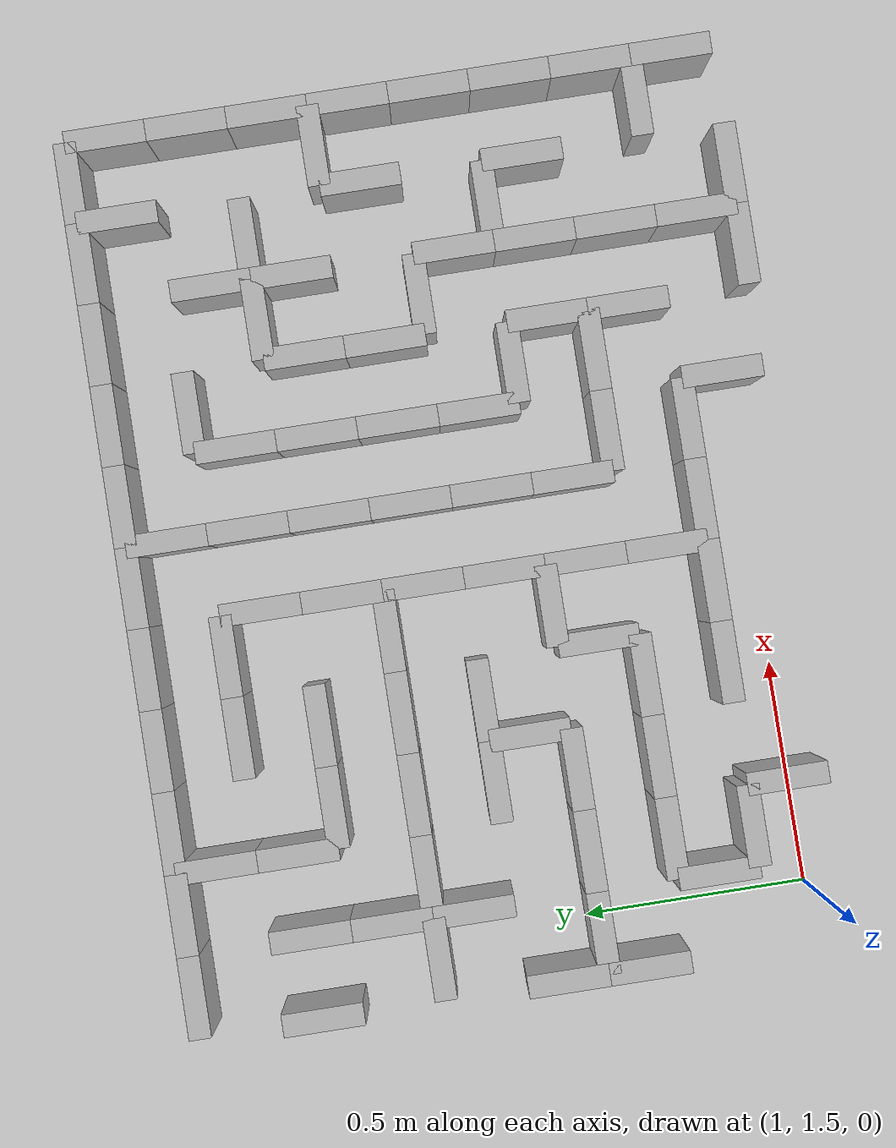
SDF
<sdf version="1.6">
 <world name="default">
  <model name="ground_plane">
   <static>1</static>
   <link name="link">
    <collision name="collision">
     <geometry><plane><normal>0 0 1</normal><size>100 100</size></plane></geometry>
     <surface><friction><ode><mu>100</mu><mu2>50</mu2></ode></friction></surface>
    </collision>
    <visual name="visual">
     <cast_shadows>0</cast_shadows>
     <geometry><plane><normal>0 0 1</normal><size>100 100</size></plane></geometry>
     <material>
      <script><uri>file://media/materials/scripts/gazebo.material</uri><name>Gazebo/Grey</name></script>
     </material>
    </visual>
   </link>
  </model>
  <model name="labyrinth_wall278">
   <pose>1.260000 1.530000 0.09 0 0 1.570796</pose>
   <link name="link">
    <inertial><mass>3.0</mass></inertial>
    <collision name="collision"><geometry><box><size>0.180 0.050 0.180</size></box></geometry></collision>
    <visual name="visual"><geometry><box><size>0.180 0.050 0.180</size></box></geometry></visual>
   </link>
   <static>true</static>
  </model>
  <model name="labyrinth_wall288">
   <pose>2.160000 1.530000 0.09 0 0 1.570796</pose>
   <link name="link">
    <inertial><mass>3.0</mass></inertial>
    <collision name="collision"><geometry><box><size>0.180 0.050 0.180</size></box></geometry></collision>
    <visual name="visual"><geometry><box><size>0.180 0.050 0.180</size></box></geometry></visual>
   </link>
   <static>true</static>
  </model>
  <model name="labyrinth_wall291">
   <pose>2.430000 1.440000 0.09 0 0 0.000000</pose>
   <link name="link">
    <inertial><mass>3.0</mass></inertial>
    <collision name="collision"><geometry><box><size>0.180 0.050 0.180</size></box></geometry></collision>
    <visual name="visual"><geometry><box><size>0.180 0.050 0.180</size></box></geometry></visual>
   </link>
   <static>true</static>
  </model>
  <model name="labyrinth_wall292">
   <pose>2.520000 1.530000 0.09 0 0 1.570796</pose>
   <link name="link">
    <inertial><mass>3.0</mass></inertial>
    <collision name="collision"><geometry><box><size>0.180 0.050 0.180</size></box></geometry></collision>
    <visual name="visual"><geometry><box><size>0.180 0.050 0.180</size></box></geometry></visual>
   </link>
   <static>true</static>
  </model>
  <model name="labyrinth_wall293">
   <pose>2.610000 1.440000 0.09 0 0 0.000000</pose>
   <link name="link">
    <inertial><mass>3.0</mass></inertial>
    <collision name="collision"><geometry><box><size>0.180 0.050 0.180</size></box></geometry></collision>
    <visual name="visual"><geometry><box><size>0.180 0.050 0.180</size></box></geometry></visual>
   </link>
   <static>true</static>
  </model>
  <model name="labyrinth_wall296">
   <pose>2.880000 1.530000 0.09 0 0 1.570796</pose>
   <link name="link">
    <inertial><mass>3.0</mass></inertial>
    <collision name="collision"><geometry><box><size>0.180 0.050 0.180</size></box></geometry></collision>
    <visual name="visual"><geometry><box><size>0.180 0.050 0.180</size></box></geometry></visual>
   </link>
   <static>true</static>
  </model>
  <model name="labyrinth_wall309">
   <pose>1.080000 1.710000 0.09 0 0 1.570796</pose>
   <link name="link">
    <inertial><mass>3.0</mass></inertial>
    <collision name="collision"><geometry><box><size>0.180 0.050 0.180</size></box></geometry></collision>
    <visual name="visual"><geometry><box><size>0.180 0.050 0.180</size></box></geometry></visual>
   </link>
   <static>true</static>
  </model>
  <model name="labyrinth_wall310">
   <pose>1.170000 1.620000 0.09 0 0 0.000000</pose>
   <link name="link">
    <inertial><mass>3.0</mass></inertial>
    <collision name="collision"><geometry><box><size>0.180 0.050 0.180</size></box></geometry></collision>
    <visual name="visual"><geometry><box><size>0.180 0.050 0.180</size></box></geometry></visual>
   </link>
   <static>true</static>
  </model>
  <model name="labyrinth_wall314">
   <pose>1.530000 1.620000 0.09 0 0 0.000000</pose>
   <link name="link">
    <inertial><mass>3.0</mass></inertial>
    <collision name="collision"><geometry><box><size>0.180 0.050 0.180</size></box></geometry></collision>
    <visual name="visual"><geometry><box><size>0.180 0.050 0.180</size></box></geometry></visual>
   </link>
   <static>true</static>
  </model>
  <model name="labyrinth_wall316">
   <pose>1.710000 1.620000 0.09 0 0 0.000000</pose>
   <link name="link">
    <inertial><mass>3.0</mass></inertial>
    <collision name="collision"><geometry><box><size>0.180 0.050 0.180</size></box></geometry></collision>
    <visual name="visual"><geometry><box><size>0.180 0.050 0.180</size></box></geometry></visual>
   </link>
   <static>true</static>
  </model>
  <model name="labyrinth_wall317">
   <pose>1.800000 1.710000 0.09 0 0 1.570796</pose>
   <link name="link">
    <inertial><mass>3.0</mass></inertial>
    <collision name="collision"><geometry><box><size>0.180 0.050 0.180</size></box></geometry></collision>
    <visual name="visual"><geometry><box><size>0.180 0.050 0.180</size></box></geometry></visual>
   </link>
   <static>true</static>
  </model>
  <model name="labyrinth_wall318">
   <pose>1.890000 1.620000 0.09 0 0 0.000000</pose>
   <link name="link">
    <inertial><mass>3.0</mass></inertial>
    <collision name="collision"><geometry><box><size>0.180 0.050 0.180</size></box></geometry></collision>
    <visual name="visual"><geometry><box><size>0.180 0.050 0.180</size></box></geometry></visual>
   </link>
   <static>true</static>
  </model>
  <model name="labyrinth_wall320">
   <pose>2.070000 1.620000 0.09 0 0 0.000000</pose>
   <link name="link">
    <inertial><mass>3.0</mass></inertial>
    <collision name="collision"><geometry><box><size>0.180 0.050 0.180</size></box></geometry></collision>
    <visual name="visual"><geometry><box><size>0.180 0.050 0.180</size></box></geometry></visual>
   </link>
   <static>true</static>
  </model>
  <model name="labyrinth_wall323">
   <pose>2.340000 1.710000 0.09 0 0 1.570796</pose>
   <link name="link">
    <inertial><mass>3.0</mass></inertial>
    <collision name="collision"><geometry><box><size>0.180 0.050 0.180</size></box></geometry></collision>
    <visual name="visual"><geometry><box><size>0.180 0.050 0.180</size></box></geometry></visual>
   </link>
   <static>true</static>
  </model>
  <model name="labyrinth_wall325">
   <pose>2.520000 1.710000 0.09 0 0 1.570796</pose>
   <link name="link">
    <inertial><mass>3.0</mass></inertial>
    <collision name="collision"><geometry><box><size>0.180 0.050 0.180</size></box></geometry></collision>
    <visual name="visual"><geometry><box><size>0.180 0.050 0.180</size></box></geometry></visual>
   </link>
   <static>true</static>
  </model>
  <model name="labyrinth_wall328">
   <pose>2.790000 1.620000 0.09 0 0 0.000000</pose>
   <link name="link">
    <inertial><mass>3.0</mass></inertial>
    <collision name="collision"><geometry><box><size>0.180 0.050 0.180</size></box></geometry></collision>
    <visual name="visual"><geometry><box><size>0.180 0.050 0.180</size></box></geometry></visual>
   </link>
   <static>true</static>
  </model>
  <model name="labyrinth_wall329">
   <pose>2.880000 1.710000 0.09 0 0 1.570796</pose>
   <link name="link">
    <inertial><mass>3.0</mass></inertial>
    <collision name="collision"><geometry><box><size>0.180 0.050 0.180</size></box></geometry></collision>
    <visual name="visual"><geometry><box><size>0.180 0.050 0.180</size></box></geometry></visual>
   </link>
   <static>true</static>
  </model>
  <model name="labyrinth_wall340">
   <pose>0.900000 1.890000 0.09 0 0 1.570796</pose>
   <link name="link">
    <inertial><mass>3.0</mass></inertial>
    <collision name="collision"><geometry><box><size>0.180 0.050 0.180</size></box></geometry></collision>
    <visual name="visual"><geometry><box><size>0.180 0.050 0.180</size></box></geometry></visual>
   </link>
   <static>true</static>
  </model>
  <model name="labyrinth_wall343">
   <pose>1.170000 1.800000 0.09 0 0 0.000000</pose>
   <link name="link">
    <inertial><mass>3.0</mass></inertial>
    <collision name="collision"><geometry><box><size>0.180 0.050 0.180</size></box></geometry></collision>
    <visual name="visual"><geometry><box><size>0.180 0.050 0.180</size></box></geometry></visual>
   </link>
   <static>true</static>
  </model>
  <model name="labyrinth_wall345">
   <pose>1.350000 1.800000 0.09 0 0 0.000000</pose>
   <link name="link">
    <inertial><mass>3.0</mass></inertial>
    <collision name="collision"><geometry><box><size>0.180 0.050 0.180</size></box></geometry></collision>
    <visual name="visual"><geometry><box><size>0.180 0.050 0.180</size></box></geometry></visual>
   </link>
   <static>true</static>
  </model>
  <model name="labyrinth_wall347">
   <pose>1.530000 1.800000 0.09 0 0 0.000000</pose>
   <link name="link">
    <inertial><mass>3.0</mass></inertial>
    <collision name="collision"><geometry><box><size>0.180 0.050 0.180</size></box></geometry></collision>
    <visual name="visual"><geometry><box><size>0.180 0.050 0.180</size></box></geometry></visual>
   </link>
   <static>true</static>
  </model>
  <model name="labyrinth_wall348">
   <pose>1.620000 1.890000 0.09 0 0 1.570796</pose>
   <link name="link">
    <inertial><mass>3.0</mass></inertial>
    <collision name="collision"><geometry><box><size>0.180 0.050 0.180</size></box></geometry></collision>
    <visual name="visual"><geometry><box><size>0.180 0.050 0.180</size></box></geometry></visual>
   </link>
   <static>true</static>
  </model>
  <model name="labyrinth_wall350">
   <pose>1.800000 1.890000 0.09 0 0 1.570796</pose>
   <link name="link">
    <inertial><mass>3.0</mass></inertial>
    <collision name="collision"><geometry><box><size>0.180 0.050 0.180</size></box></geometry></collision>
    <visual name="visual"><geometry><box><size>0.180 0.050 0.180</size></box></geometry></visual>
   </link>
   <static>true</static>
  </model>
  <model name="labyrinth_wall352">
   <pose>1.980000 1.890000 0.09 0 0 1.570796</pose>
   <link name="link">
    <inertial><mass>3.0</mass></inertial>
    <collision name="collision"><geometry><box><size>0.180 0.050 0.180</size></box></geometry></collision>
    <visual name="visual"><geometry><box><size>0.180 0.050 0.180</size></box></geometry></visual>
   </link>
   <static>true</static>
  </model>
  <model name="labyrinth_wall353">
   <pose>2.070000 1.800000 0.09 0 0 0.000000</pose>
   <link name="link">
    <inertial><mass>3.0</mass></inertial>
    <collision name="collision"><geometry><box><size>0.180 0.050 0.180</size></box></geometry></collision>
    <visual name="visual"><geometry><box><size>0.180 0.050 0.180</size></box></geometry></visual>
   </link>
   <static>true</static>
  </model>
  <model name="labyrinth_wall355">
   <pose>2.250000 1.800000 0.09 0 0 0.000000</pose>
   <link name="link">
    <inertial><mass>3.0</mass></inertial>
    <collision name="collision"><geometry><box><size>0.180 0.050 0.180</size></box></geometry></collision>
    <visual name="visual"><geometry><box><size>0.180 0.050 0.180</size></box></geometry></visual>
   </link>
   <static>true</static>
  </model>
  <model name="labyrinth_wall356">
   <pose>2.340000 1.890000 0.09 0 0 1.570796</pose>
   <link name="link">
    <inertial><mass>3.0</mass></inertial>
    <collision name="collision"><geometry><box><size>0.180 0.050 0.180</size></box></geometry></collision>
    <visual name="visual"><geometry><box><size>0.180 0.050 0.180</size></box></geometry></visual>
   </link>
   <static>true</static>
  </model>
  <model name="labyrinth_wall358">
   <pose>2.520000 1.890000 0.09 0 0 1.570796</pose>
   <link name="link">
    <inertial><mass>3.0</mass></inertial>
    <collision name="collision"><geometry><box><size>0.180 0.050 0.180</size></box></geometry></collision>
    <visual name="visual"><geometry><box><size>0.180 0.050 0.180</size></box></geometry></visual>
   </link>
   <static>true</static>
  </model>
  <model name="labyrinth_wall360">
   <pose>2.700000 1.890000 0.09 0 0 1.570796</pose>
   <link name="link">
    <inertial><mass>3.0</mass></inertial>
    <collision name="collision"><geometry><box><size>0.180 0.050 0.180</size></box></geometry></collision>
    <visual name="visual"><geometry><box><size>0.180 0.050 0.180</size></box></geometry></visual>
   </link>
   <static>true</static>
  </model>
  <model name="labyrinth_wall362">
   <pose>2.880000 1.890000 0.09 0 0 1.570796</pose>
   <link name="link">
    <inertial><mass>3.0</mass></inertial>
    <collision name="collision"><geometry><box><size>0.180 0.050 0.180</size></box></geometry></collision>
    <visual name="visual"><geometry><box><size>0.180 0.050 0.180</size></box></geometry></visual>
   </link>
   <static>true</static>
  </model>
  <model name="labyrinth_wall373">
   <pose>0.900000 2.070000 0.09 0 0 1.570796</pose>
   <link name="link">
    <inertial><mass>3.0</mass></inertial>
    <collision name="collision"><geometry><box><size>0.180 0.050 0.180</size></box></geometry></collision>
    <visual name="visual"><geometry><box><size>0.180 0.050 0.180</size></box></geometry></visual>
   </link>
   <static>true</static>
  </model>
  <model name="labyrinth_wall374">
   <pose>0.990000 1.980000 0.09 0 0 0.000000</pose>
   <link name="link">
    <inertial><mass>3.0</mass></inertial>
    <collision name="collision"><geometry><box><size>0.180 0.050 0.180</size></box></geometry></collision>
    <visual name="visual"><geometry><box><size>0.180 0.050 0.180</size></box></geometry></visual>
   </link>
   <static>true</static>
  </model>
  <model name="labyrinth_wall376">
   <pose>1.170000 1.980000 0.09 0 0 0.000000</pose>
   <link name="link">
    <inertial><mass>3.0</mass></inertial>
    <collision name="collision"><geometry><box><size>0.180 0.050 0.180</size></box></geometry></collision>
    <visual name="visual"><geometry><box><size>0.180 0.050 0.180</size></box></geometry></visual>
   </link>
   <static>true</static>
  </model>
  <model name="labyrinth_wall378">
   <pose>1.350000 1.980000 0.09 0 0 0.000000</pose>
   <link name="link">
    <inertial><mass>3.0</mass></inertial>
    <collision name="collision"><geometry><box><size>0.180 0.050 0.180</size></box></geometry></collision>
    <visual name="visual"><geometry><box><size>0.180 0.050 0.180</size></box></geometry></visual>
   </link>
   <static>true</static>
  </model>
  <model name="labyrinth_wall379">
   <pose>1.440000 2.070000 0.09 0 0 1.570796</pose>
   <link name="link">
    <inertial><mass>3.0</mass></inertial>
    <collision name="collision"><geometry><box><size>0.180 0.050 0.180</size></box></geometry></collision>
    <visual name="visual"><geometry><box><size>0.180 0.050 0.180</size></box></geometry></visual>
   </link>
   <static>true</static>
  </model>
  <model name="labyrinth_wall382">
   <pose>1.710000 1.980000 0.09 0 0 0.000000</pose>
   <link name="link">
    <inertial><mass>3.0</mass></inertial>
    <collision name="collision"><geometry><box><size>0.180 0.050 0.180</size></box></geometry></collision>
    <visual name="visual"><geometry><box><size>0.180 0.050 0.180</size></box></geometry></visual>
   </link>
   <static>true</static>
  </model>
  <model name="labyrinth_wall383">
   <pose>1.800000 2.070000 0.09 0 0 1.570796</pose>
   <link name="link">
    <inertial><mass>3.0</mass></inertial>
    <collision name="collision"><geometry><box><size>0.180 0.050 0.180</size></box></geometry></collision>
    <visual name="visual"><geometry><box><size>0.180 0.050 0.180</size></box></geometry></visual>
   </link>
   <static>true</static>
  </model>
  <model name="labyrinth_wall385">
   <pose>1.980000 2.070000 0.09 0 0 1.570796</pose>
   <link name="link">
    <inertial><mass>3.0</mass></inertial>
    <collision name="collision"><geometry><box><size>0.180 0.050 0.180</size></box></geometry></collision>
    <visual name="visual"><geometry><box><size>0.180 0.050 0.180</size></box></geometry></visual>
   </link>
   <static>true</static>
  </model>
  <model name="labyrinth_wall387">
   <pose>2.160000 2.070000 0.09 0 0 1.570796</pose>
   <link name="link">
    <inertial><mass>3.0</mass></inertial>
    <collision name="collision"><geometry><box><size>0.180 0.050 0.180</size></box></geometry></collision>
    <visual name="visual"><geometry><box><size>0.180 0.050 0.180</size></box></geometry></visual>
   </link>
   <static>true</static>
  </model>
  <model name="labyrinth_wall388">
   <pose>2.250000 1.980000 0.09 0 0 0.000000</pose>
   <link name="link">
    <inertial><mass>3.0</mass></inertial>
    <collision name="collision"><geometry><box><size>0.180 0.050 0.180</size></box></geometry></collision>
    <visual name="visual"><geometry><box><size>0.180 0.050 0.180</size></box></geometry></visual>
   </link>
   <static>true</static>
  </model>
  <model name="labyrinth_wall391">
   <pose>2.520000 2.070000 0.09 0 0 1.570796</pose>
   <link name="link">
    <inertial><mass>3.0</mass></inertial>
    <collision name="collision"><geometry><box><size>0.180 0.050 0.180</size></box></geometry></collision>
    <visual name="visual"><geometry><box><size>0.180 0.050 0.180</size></box></geometry></visual>
   </link>
   <static>true</static>
  </model>
  <model name="labyrinth_wall392">
   <pose>2.610000 1.980000 0.09 0 0 0.000000</pose>
   <link name="link">
    <inertial><mass>3.0</mass></inertial>
    <collision name="collision"><geometry><box><size>0.180 0.050 0.180</size></box></geometry></collision>
    <visual name="visual"><geometry><box><size>0.180 0.050 0.180</size></box></geometry></visual>
   </link>
   <static>true</static>
  </model>
  <model name="labyrinth_wall395">
   <pose>2.880000 2.070000 0.09 0 0 1.570796</pose>
   <link name="link">
    <inertial><mass>3.0</mass></inertial>
    <collision name="collision"><geometry><box><size>0.180 0.050 0.180</size></box></geometry></collision>
    <visual name="visual"><geometry><box><size>0.180 0.050 0.180</size></box></geometry></visual>
   </link>
   <static>true</static>
  </model>
  <model name="labyrinth_wall408">
   <pose>1.080000 2.250000 0.09 0 0 1.570796</pose>
   <link name="link">
    <inertial><mass>3.0</mass></inertial>
    <collision name="collision"><geometry><box><size>0.180 0.050 0.180</size></box></geometry></collision>
    <visual name="visual"><geometry><box><size>0.180 0.050 0.180</size></box></geometry></visual>
   </link>
   <static>true</static>
  </model>
  <model name="labyrinth_wall411">
   <pose>1.350000 2.160000 0.09 0 0 0.000000</pose>
   <link name="link">
    <inertial><mass>3.0</mass></inertial>
    <collision name="collision"><geometry><box><size>0.180 0.050 0.180</size></box></geometry></collision>
    <visual name="visual"><geometry><box><size>0.180 0.050 0.180</size></box></geometry></visual>
   </link>
   <static>true</static>
  </model>
  <model name="labyrinth_wall413">
   <pose>1.530000 2.160000 0.09 0 0 0.000000</pose>
   <link name="link">
    <inertial><mass>3.0</mass></inertial>
    <collision name="collision"><geometry><box><size>0.180 0.050 0.180</size></box></geometry></collision>
    <visual name="visual"><geometry><box><size>0.180 0.050 0.180</size></box></geometry></visual>
   </link>
   <static>true</static>
  </model>
  <model name="labyrinth_wall416">
   <pose>1.800000 2.250000 0.09 0 0 1.570796</pose>
   <link name="link">
    <inertial><mass>3.0</mass></inertial>
    <collision name="collision"><geometry><box><size>0.180 0.050 0.180</size></box></geometry></collision>
    <visual name="visual"><geometry><box><size>0.180 0.050 0.180</size></box></geometry></visual>
   </link>
   <static>true</static>
  </model>
  <model name="labyrinth_wall418">
   <pose>1.980000 2.250000 0.09 0 0 1.570796</pose>
   <link name="link">
    <inertial><mass>3.0</mass></inertial>
    <collision name="collision"><geometry><box><size>0.180 0.050 0.180</size></box></geometry></collision>
    <visual name="visual"><geometry><box><size>0.180 0.050 0.180</size></box></geometry></visual>
   </link>
   <static>true</static>
  </model>
  <model name="labyrinth_wall420">
   <pose>2.160000 2.250000 0.09 0 0 1.570796</pose>
   <link name="link">
    <inertial><mass>3.0</mass></inertial>
    <collision name="collision"><geometry><box><size>0.180 0.050 0.180</size></box></geometry></collision>
    <visual name="visual"><geometry><box><size>0.180 0.050 0.180</size></box></geometry></visual>
   </link>
   <static>true</static>
  </model>
  <model name="labyrinth_wall422">
   <pose>2.340000 2.250000 0.09 0 0 1.570796</pose>
   <link name="link">
    <inertial><mass>3.0</mass></inertial>
    <collision name="collision"><geometry><box><size>0.180 0.050 0.180</size></box></geometry></collision>
    <visual name="visual"><geometry><box><size>0.180 0.050 0.180</size></box></geometry></visual>
   </link>
   <static>true</static>
  </model>
  <model name="labyrinth_wall423">
   <pose>2.430000 2.160000 0.09 0 0 0.000000</pose>
   <link name="link">
    <inertial><mass>3.0</mass></inertial>
    <collision name="collision"><geometry><box><size>0.180 0.050 0.180</size></box></geometry></collision>
    <visual name="visual"><geometry><box><size>0.180 0.050 0.180</size></box></geometry></visual>
   </link>
   <static>true</static>
  </model>
  <model name="labyrinth_wall426">
   <pose>2.700000 2.250000 0.09 0 0 1.570796</pose>
   <link name="link">
    <inertial><mass>3.0</mass></inertial>
    <collision name="collision"><geometry><box><size>0.180 0.050 0.180</size></box></geometry></collision>
    <visual name="visual"><geometry><box><size>0.180 0.050 0.180</size></box></geometry></visual>
   </link>
   <static>true</static>
  </model>
  <model name="labyrinth_wall428">
   <pose>2.880000 2.250000 0.09 0 0 1.570796</pose>
   <link name="link">
    <inertial><mass>3.0</mass></inertial>
    <collision name="collision"><geometry><box><size>0.180 0.050 0.180</size></box></geometry></collision>
    <visual name="visual"><geometry><box><size>0.180 0.050 0.180</size></box></geometry></visual>
   </link>
   <static>true</static>
  </model>
  <model name="labyrinth_wall440">
   <pose>0.990000 2.340000 0.09 0 0 0.000000</pose>
   <link name="link">
    <inertial><mass>3.0</mass></inertial>
    <collision name="collision"><geometry><box><size>0.180 0.050 0.180</size></box></geometry></collision>
    <visual name="visual"><geometry><box><size>0.180 0.050 0.180</size></box></geometry></visual>
   </link>
   <static>true</static>
  </model>
  <model name="labyrinth_wall441">
   <pose>1.080000 2.430000 0.09 0 0 1.570796</pose>
   <link name="link">
    <inertial><mass>3.0</mass></inertial>
    <collision name="collision"><geometry><box><size>0.180 0.050 0.180</size></box></geometry></collision>
    <visual name="visual"><geometry><box><size>0.180 0.050 0.180</size></box></geometry></visual>
   </link>
   <static>true</static>
  </model>
  <model name="labyrinth_wall442">
   <pose>1.170000 2.340000 0.09 0 0 0.000000</pose>
   <link name="link">
    <inertial><mass>3.0</mass></inertial>
    <collision name="collision"><geometry><box><size>0.180 0.050 0.180</size></box></geometry></collision>
    <visual name="visual"><geometry><box><size>0.180 0.050 0.180</size></box></geometry></visual>
   </link>
   <static>true</static>
  </model>
  <model name="labyrinth_wall444">
   <pose>1.350000 2.340000 0.09 0 0 0.000000</pose>
   <link name="link">
    <inertial><mass>3.0</mass></inertial>
    <collision name="collision"><geometry><box><size>0.180 0.050 0.180</size></box></geometry></collision>
    <visual name="visual"><geometry><box><size>0.180 0.050 0.180</size></box></geometry></visual>
   </link>
   <static>true</static>
  </model>
  <model name="labyrinth_wall446">
   <pose>1.530000 2.340000 0.09 0 0 0.000000</pose>
   <link name="link">
    <inertial><mass>3.0</mass></inertial>
    <collision name="collision"><geometry><box><size>0.180 0.050 0.180</size></box></geometry></collision>
    <visual name="visual"><geometry><box><size>0.180 0.050 0.180</size></box></geometry></visual>
   </link>
   <static>true</static>
  </model>
  <model name="labyrinth_wall448">
   <pose>1.710000 2.340000 0.09 0 0 0.000000</pose>
   <link name="link">
    <inertial><mass>3.0</mass></inertial>
    <collision name="collision"><geometry><box><size>0.180 0.050 0.180</size></box></geometry></collision>
    <visual name="visual"><geometry><box><size>0.180 0.050 0.180</size></box></geometry></visual>
   </link>
   <static>true</static>
  </model>
  <model name="labyrinth_wall449">
   <pose>1.800000 2.430000 0.09 0 0 1.570796</pose>
   <link name="link">
    <inertial><mass>3.0</mass></inertial>
    <collision name="collision"><geometry><box><size>0.180 0.050 0.180</size></box></geometry></collision>
    <visual name="visual"><geometry><box><size>0.180 0.050 0.180</size></box></geometry></visual>
   </link>
   <static>true</static>
  </model>
  <model name="labyrinth_wall451">
   <pose>1.980000 2.430000 0.09 0 0 1.570796</pose>
   <link name="link">
    <inertial><mass>3.0</mass></inertial>
    <collision name="collision"><geometry><box><size>0.180 0.050 0.180</size></box></geometry></collision>
    <visual name="visual"><geometry><box><size>0.180 0.050 0.180</size></box></geometry></visual>
   </link>
   <static>true</static>
  </model>
  <model name="labyrinth_wall453">
   <pose>2.160000 2.430000 0.09 0 0 1.570796</pose>
   <link name="link">
    <inertial><mass>3.0</mass></inertial>
    <collision name="collision"><geometry><box><size>0.180 0.050 0.180</size></box></geometry></collision>
    <visual name="visual"><geometry><box><size>0.180 0.050 0.180</size></box></geometry></visual>
   </link>
   <static>true</static>
  </model>
  <model name="labyrinth_wall455">
   <pose>2.340000 2.430000 0.09 0 0 1.570796</pose>
   <link name="link">
    <inertial><mass>3.0</mass></inertial>
    <collision name="collision"><geometry><box><size>0.180 0.050 0.180</size></box></geometry></collision>
    <visual name="visual"><geometry><box><size>0.180 0.050 0.180</size></box></geometry></visual>
   </link>
   <static>true</static>
  </model>
  <model name="labyrinth_wall457">
   <pose>2.520000 2.430000 0.09 0 0 1.570796</pose>
   <link name="link">
    <inertial><mass>3.0</mass></inertial>
    <collision name="collision"><geometry><box><size>0.180 0.050 0.180</size></box></geometry></collision>
    <visual name="visual"><geometry><box><size>0.180 0.050 0.180</size></box></geometry></visual>
   </link>
   <static>true</static>
  </model>
  <model name="labyrinth_wall460">
   <pose>2.790000 2.340000 0.09 0 0 0.000000</pose>
   <link name="link">
    <inertial><mass>3.0</mass></inertial>
    <collision name="collision"><geometry><box><size>0.180 0.050 0.180</size></box></geometry></collision>
    <visual name="visual"><geometry><box><size>0.180 0.050 0.180</size></box></geometry></visual>
   </link>
   <static>true</static>
  </model>
  <model name="labyrinth_wall461">
   <pose>2.880000 2.430000 0.09 0 0 1.570796</pose>
   <link name="link">
    <inertial><mass>3.0</mass></inertial>
    <collision name="collision"><geometry><box><size>0.180 0.050 0.180</size></box></geometry></collision>
    <visual name="visual"><geometry><box><size>0.180 0.050 0.180</size></box></geometry></visual>
   </link>
   <static>true</static>
  </model>
  <model name="labyrinth_wall472">
   <pose>0.900000 2.610000 0.09 0 0 1.570796</pose>
   <link name="link">
    <inertial><mass>3.0</mass></inertial>
    <collision name="collision"><geometry><box><size>0.180 0.050 0.180</size></box></geometry></collision>
    <visual name="visual"><geometry><box><size>0.180 0.050 0.180</size></box></geometry></visual>
   </link>
   <static>true</static>
  </model>
  <model name="labyrinth_wall474">
   <pose>1.080000 2.610000 0.09 0 0 1.570796</pose>
   <link name="link">
    <inertial><mass>3.0</mass></inertial>
    <collision name="collision"><geometry><box><size>0.180 0.050 0.180</size></box></geometry></collision>
    <visual name="visual"><geometry><box><size>0.180 0.050 0.180</size></box></geometry></visual>
   </link>
   <static>true</static>
  </model>
  <model name="labyrinth_wall476">
   <pose>1.260000 2.610000 0.09 0 0 1.570796</pose>
   <link name="link">
    <inertial><mass>3.0</mass></inertial>
    <collision name="collision"><geometry><box><size>0.180 0.050 0.180</size></box></geometry></collision>
    <visual name="visual"><geometry><box><size>0.180 0.050 0.180</size></box></geometry></visual>
   </link>
   <static>true</static>
  </model>
  <model name="labyrinth_wall477">
   <pose>1.350000 2.520000 0.09 0 0 0.000000</pose>
   <link name="link">
    <inertial><mass>3.0</mass></inertial>
    <collision name="collision"><geometry><box><size>0.180 0.050 0.180</size></box></geometry></collision>
    <visual name="visual"><geometry><box><size>0.180 0.050 0.180</size></box></geometry></visual>
   </link>
   <static>true</static>
  </model>
  <model name="labyrinth_wall479">
   <pose>1.530000 2.520000 0.09 0 0 0.000000</pose>
   <link name="link">
    <inertial><mass>3.0</mass></inertial>
    <collision name="collision"><geometry><box><size>0.180 0.050 0.180</size></box></geometry></collision>
    <visual name="visual"><geometry><box><size>0.180 0.050 0.180</size></box></geometry></visual>
   </link>
   <static>true</static>
  </model>
  <model name="labyrinth_wall482">
   <pose>1.800000 2.610000 0.09 0 0 1.570796</pose>
   <link name="link">
    <inertial><mass>3.0</mass></inertial>
    <collision name="collision"><geometry><box><size>0.180 0.050 0.180</size></box></geometry></collision>
    <visual name="visual"><geometry><box><size>0.180 0.050 0.180</size></box></geometry></visual>
   </link>
   <static>true</static>
  </model>
  <model name="labyrinth_wall484">
   <pose>1.980000 2.610000 0.09 0 0 1.570796</pose>
   <link name="link">
    <inertial><mass>3.0</mass></inertial>
    <collision name="collision"><geometry><box><size>0.180 0.050 0.180</size></box></geometry></collision>
    <visual name="visual"><geometry><box><size>0.180 0.050 0.180</size></box></geometry></visual>
   </link>
   <static>true</static>
  </model>
  <model name="labyrinth_wall486">
   <pose>2.160000 2.610000 0.09 0 0 1.570796</pose>
   <link name="link">
    <inertial><mass>3.0</mass></inertial>
    <collision name="collision"><geometry><box><size>0.180 0.050 0.180</size></box></geometry></collision>
    <visual name="visual"><geometry><box><size>0.180 0.050 0.180</size></box></geometry></visual>
   </link>
   <static>true</static>
  </model>
  <model name="labyrinth_wall489">
   <pose>2.430000 2.520000 0.09 0 0 0.000000</pose>
   <link name="link">
    <inertial><mass>3.0</mass></inertial>
    <collision name="collision"><geometry><box><size>0.180 0.050 0.180</size></box></geometry></collision>
    <visual name="visual"><geometry><box><size>0.180 0.050 0.180</size></box></geometry></visual>
   </link>
   <static>true</static>
  </model>
  <model name="labyrinth_wall490">
   <pose>2.520000 2.610000 0.09 0 0 1.570796</pose>
   <link name="link">
    <inertial><mass>3.0</mass></inertial>
    <collision name="collision"><geometry><box><size>0.180 0.050 0.180</size></box></geometry></collision>
    <visual name="visual"><geometry><box><size>0.180 0.050 0.180</size></box></geometry></visual>
   </link>
   <static>true</static>
  </model>
  <model name="labyrinth_wall491">
   <pose>2.610000 2.520000 0.09 0 0 0.000000</pose>
   <link name="link">
    <inertial><mass>3.0</mass></inertial>
    <collision name="collision"><geometry><box><size>0.180 0.050 0.180</size></box></geometry></collision>
    <visual name="visual"><geometry><box><size>0.180 0.050 0.180</size></box></geometry></visual>
   </link>
   <static>true</static>
  </model>
  <model name="labyrinth_wall494">
   <pose>2.880000 2.610000 0.09 0 0 1.570796</pose>
   <link name="link">
    <inertial><mass>3.0</mass></inertial>
    <collision name="collision"><geometry><box><size>0.180 0.050 0.180</size></box></geometry></collision>
    <visual name="visual"><geometry><box><size>0.180 0.050 0.180</size></box></geometry></visual>
   </link>
   <static>true</static>
  </model>
  <model name="labyrinth_wall513">
   <pose>0.990000 2.880000 0.09 0 0 0.000000</pose>
   <link name="link">
    <inertial><mass>3.0</mass></inertial>
    <collision name="collision"><geometry><box><size>0.180 0.050 0.180</size></box></geometry></collision>
    <visual name="visual"><geometry><box><size>0.180 0.050 0.180</size></box></geometry></visual>
   </link>
   <static>true</static>
  </model>
  <model name="labyrinth_wall515">
   <pose>1.260000 2.790000 0.09 0 0 1.570796</pose>
   <link name="link">
    <inertial><mass>3.0</mass></inertial>
    <collision name="collision"><geometry><box><size>0.180 0.050 0.180</size></box></geometry></collision>
    <visual name="visual"><geometry><box><size>0.180 0.050 0.180</size></box></geometry></visual>
   </link>
   <static>true</static>
  </model>
  <model name="labyrinth_wall516">
   <pose>1.170000 2.880000 0.09 0 0 0.000000</pose>
   <link name="link">
    <inertial><mass>3.0</mass></inertial>
    <collision name="collision"><geometry><box><size>0.180 0.050 0.180</size></box></geometry></collision>
    <visual name="visual"><geometry><box><size>0.180 0.050 0.180</size></box></geometry></visual>
   </link>
   <static>true</static>
  </model>
  <model name="labyrinth_wall519">
   <pose>1.350000 2.880000 0.09 0 0 0.000000</pose>
   <link name="link">
    <inertial><mass>3.0</mass></inertial>
    <collision name="collision"><geometry><box><size>0.180 0.050 0.180</size></box></geometry></collision>
    <visual name="visual"><geometry><box><size>0.180 0.050 0.180</size></box></geometry></visual>
   </link>
   <static>true</static>
  </model>
  <model name="labyrinth_wall520">
   <pose>1.530000 2.700000 0.09 0 0 0.000000</pose>
   <link name="link">
    <inertial><mass>3.0</mass></inertial>
    <collision name="collision"><geometry><box><size>0.180 0.050 0.180</size></box></geometry></collision>
    <visual name="visual"><geometry><box><size>0.180 0.050 0.180</size></box></geometry></visual>
   </link>
   <static>true</static>
  </model>
  <model name="labyrinth_wall522">
   <pose>1.530000 2.880000 0.09 0 0 0.000000</pose>
   <link name="link">
    <inertial><mass>3.0</mass></inertial>
    <collision name="collision"><geometry><box><size>0.180 0.050 0.180</size></box></geometry></collision>
    <visual name="visual"><geometry><box><size>0.180 0.050 0.180</size></box></geometry></visual>
   </link>
   <static>true</static>
  </model>
  <model name="labyrinth_wall523">
   <pose>1.710000 2.700000 0.09 0 0 0.000000</pose>
   <link name="link">
    <inertial><mass>3.0</mass></inertial>
    <collision name="collision"><geometry><box><size>0.180 0.050 0.180</size></box></geometry></collision>
    <visual name="visual"><geometry><box><size>0.180 0.050 0.180</size></box></geometry></visual>
   </link>
   <static>true</static>
  </model>
  <model name="labyrinth_wall525">
   <pose>1.710000 2.880000 0.09 0 0 0.000000</pose>
   <link name="link">
    <inertial><mass>3.0</mass></inertial>
    <collision name="collision"><geometry><box><size>0.180 0.050 0.180</size></box></geometry></collision>
    <visual name="visual"><geometry><box><size>0.180 0.050 0.180</size></box></geometry></visual>
   </link>
   <static>true</static>
  </model>
  <model name="labyrinth_wall527">
   <pose>1.980000 2.790000 0.09 0 0 1.570796</pose>
   <link name="link">
    <inertial><mass>3.0</mass></inertial>
    <collision name="collision"><geometry><box><size>0.180 0.050 0.180</size></box></geometry></collision>
    <visual name="visual"><geometry><box><size>0.180 0.050 0.180</size></box></geometry></visual>
   </link>
   <static>true</static>
  </model>
  <model name="labyrinth_wall528">
   <pose>1.890000 2.880000 0.09 0 0 0.000000</pose>
   <link name="link">
    <inertial><mass>3.0</mass></inertial>
    <collision name="collision"><geometry><box><size>0.180 0.050 0.180</size></box></geometry></collision>
    <visual name="visual"><geometry><box><size>0.180 0.050 0.180</size></box></geometry></visual>
   </link>
   <static>true</static>
  </model>
  <model name="labyrinth_wall531">
   <pose>2.070000 2.880000 0.09 0 0 0.000000</pose>
   <link name="link">
    <inertial><mass>3.0</mass></inertial>
    <collision name="collision"><geometry><box><size>0.180 0.050 0.180</size></box></geometry></collision>
    <visual name="visual"><geometry><box><size>0.180 0.050 0.180</size></box></geometry></visual>
   </link>
   <static>true</static>
  </model>
  <model name="labyrinth_wall532">
   <pose>2.250000 2.700000 0.09 0 0 0.000000</pose>
   <link name="link">
    <inertial><mass>3.0</mass></inertial>
    <collision name="collision"><geometry><box><size>0.180 0.050 0.180</size></box></geometry></collision>
    <visual name="visual"><geometry><box><size>0.180 0.050 0.180</size></box></geometry></visual>
   </link>
   <static>true</static>
  </model>
  <model name="labyrinth_wall534">
   <pose>2.250000 2.880000 0.09 0 0 0.000000</pose>
   <link name="link">
    <inertial><mass>3.0</mass></inertial>
    <collision name="collision"><geometry><box><size>0.180 0.050 0.180</size></box></geometry></collision>
    <visual name="visual"><geometry><box><size>0.180 0.050 0.180</size></box></geometry></visual>
   </link>
   <static>true</static>
  </model>
  <model name="labyrinth_wall537">
   <pose>2.430000 2.880000 0.09 0 0 0.000000</pose>
   <link name="link">
    <inertial><mass>3.0</mass></inertial>
    <collision name="collision"><geometry><box><size>0.180 0.050 0.180</size></box></geometry></collision>
    <visual name="visual"><geometry><box><size>0.180 0.050 0.180</size></box></geometry></visual>
   </link>
   <static>true</static>
  </model>
  <model name="labyrinth_wall539">
   <pose>2.700000 2.790000 0.09 0 0 1.570796</pose>
   <link name="link">
    <inertial><mass>3.0</mass></inertial>
    <collision name="collision"><geometry><box><size>0.180 0.050 0.180</size></box></geometry></collision>
    <visual name="visual"><geometry><box><size>0.180 0.050 0.180</size></box></geometry></visual>
   </link>
   <static>true</static>
  </model>
  <model name="labyrinth_wall540">
   <pose>2.610000 2.880000 0.09 0 0 0.000000</pose>
   <link name="link">
    <inertial><mass>3.0</mass></inertial>
    <collision name="collision"><geometry><box><size>0.180 0.050 0.180</size></box></geometry></collision>
    <visual name="visual"><geometry><box><size>0.180 0.050 0.180</size></box></geometry></visual>
   </link>
   <static>true</static>
  </model>
  <model name="labyrinth_wall542">
   <pose>2.880000 2.790000 0.09 0 0 1.570796</pose>
   <link name="link">
    <inertial><mass>3.0</mass></inertial>
    <collision name="collision"><geometry><box><size>0.180 0.050 0.180</size></box></geometry></collision>
    <visual name="visual"><geometry><box><size>0.180 0.050 0.180</size></box></geometry></visual>
   </link>
   <static>true</static>
  </model>
  <model name="labyrinth_wall543">
   <pose>2.790000 2.880000 0.09 0 0 0.000000</pose>
   <link name="link">
    <inertial><mass>3.0</mass></inertial>
    <collision name="collision"><geometry><box><size>0.180 0.050 0.180</size></box></geometry></collision>
    <visual name="visual"><geometry><box><size>0.180 0.050 0.180</size></box></geometry></visual>
   </link>
   <static>true</static>
  </model>
 </world>
</sdf>
